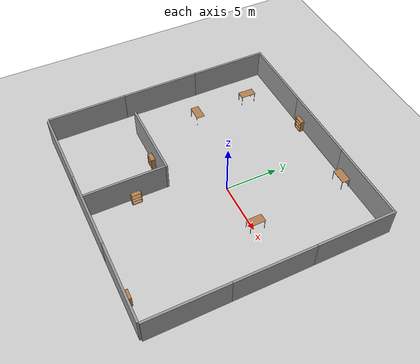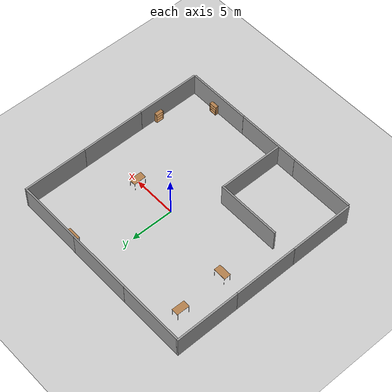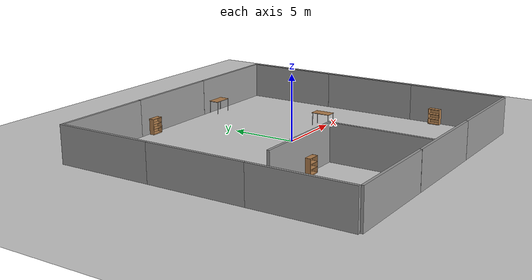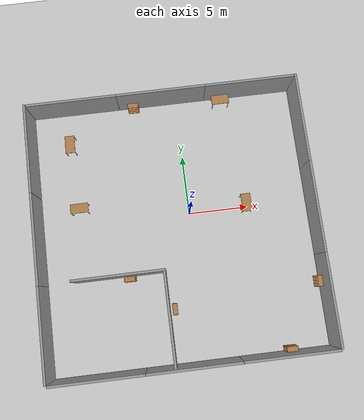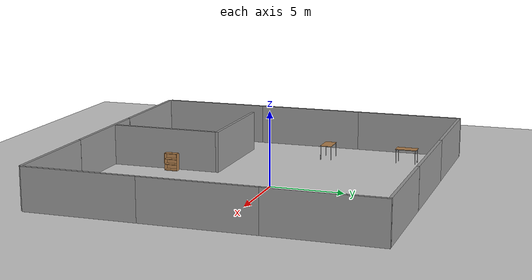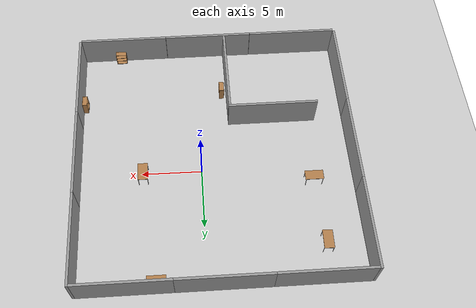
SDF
<sdf version="1.6">
 <world name="default">
  <light name="sun" type="directional">
   <pose>0 0 10 0 -0 0</pose>
   <diffuse>0.8 0.8 0.8 1</diffuse>
   <specular>0.1 0.1 0.1 1</specular>
   <attenuation>
    <range>1000</range>
    <constant>0.9</constant>
    <linear>0.01</linear>
    <quadratic>0.001</quadratic>
   </attenuation>
   <direction>-0.5 0.5 -1</direction>
  </light>
  <model name="ground_plane">
   <static>1</static>
   <link name="link">
    <collision name="collision">
     <geometry><plane><normal>0 0 1</normal><size>100 100</size></plane></geometry>
     <surface><friction><ode><mu>100</mu><mu2>50</mu2></ode></friction></surface>
    </collision>
    <visual name="visual">
     <cast_shadows>0</cast_shadows>
     <geometry><plane><normal>0 0 1</normal><size>100 100</size></plane></geometry>
     <material>
      <script><uri>file://media/materials/scripts/gazebo.material</uri><name>Gazebo/Grey</name></script>
     </material>
    </visual>
   </link>
  </model>
  <gravity>0 0 -9.8</gravity>
  <magnetic_field>6e-06 2.3e-05 -4.2e-05</magnetic_field>
  <atmosphere type="adiabatic"/>
  <physics name="default_physics" default="0" type="ode">
   <max_step_size>0.001</max_step_size>
   <real_time_factor>1</real_time_factor>
   <real_time_update_rate>1000</real_time_update_rate>
  </physics>
  <scene><ambient>0.4 0.4 0.4 1</ambient><background>0.7 0.7 0.7 1</background><shadows>1</shadows></scene>
  <spherical_coordinates>
   <surface_model>EARTH_WGS84</surface_model>
   <latitude_deg>0</latitude_deg>
   <longitude_deg>0</longitude_deg>
   <elevation>0</elevation>
   <heading_deg>0</heading_deg>
  </spherical_coordinates>
  <model name="grey_wall">
   <static>1</static>
   <link name="link">
    <pose>0 0 1.4 0 -0 0</pose>
    <collision name="collision"><geometry><box><size>7.5 0.2 2.8</size></box></geometry></collision>
    <visual name="visual">
     <cast_shadows>0</cast_shadows>
     <geometry><box><size>7.5 0.2 2.8</size></box></geometry>
     <material>
      <script>
       <uri>model://grey_wall/materials/scripts</uri>
       <uri>model://grey_wall/materials/textures</uri>
       <name>vrc/grey_wall</name>
      </script>
     </material>
    </visual>
   </link>
   <pose>6.25382 10.1197 0 0 -0 0</pose>
  </model>
  <model name="grey_wall_0">
   <static>1</static>
   <link name="link">
    <pose>0 0 1.4 0 -0 0</pose>
    <collision name="collision"><geometry><box><size>7.5 0.2 2.8</size></box></geometry></collision>
    <visual name="visual">
     <cast_shadows>0</cast_shadows>
     <geometry><box><size>7.5 0.2 2.8</size></box></geometry>
     <material>
      <script>
       <uri>model://grey_wall/materials/scripts</uri>
       <uri>model://grey_wall/materials/textures</uri>
       <name>vrc/grey_wall</name>
      </script>
     </material>
    </visual>
   </link>
   <pose>-1.23698 10.1226 0 0 -0 0</pose>
  </model>
  <model name="grey_wall_1">
   <static>1</static>
   <link name="link">
    <pose>0 0 1.4 0 -0 0</pose>
    <collision name="collision"><geometry><box><size>7.5 0.2 2.8</size></box></geometry></collision>
    <visual name="visual">
     <cast_shadows>0</cast_shadows>
     <geometry><box><size>7.5 0.2 2.8</size></box></geometry>
     <material>
      <script>
       <uri>model://grey_wall/materials/scripts</uri>
       <uri>model://grey_wall/materials/textures</uri>
       <name>vrc/grey_wall</name>
      </script>
     </material>
    </visual>
   </link>
   <pose>-8.73155 10.1173 0 0 -0 0</pose>
  </model>
  <model name="grey_wall_2">
   <static>1</static>
   <link name="link">
    <pose>0 0 1.4 0 -0 0</pose>
    <collision name="collision"><geometry><box><size>7.5 0.2 2.8</size></box></geometry></collision>
    <visual name="visual">
     <cast_shadows>0</cast_shadows>
     <geometry><box><size>7.5 0.2 2.8</size></box></geometry>
     <material>
      <script>
       <uri>model://grey_wall/materials/scripts</uri>
       <uri>model://grey_wall/materials/textures</uri>
       <name>vrc/grey_wall</name>
      </script>
     </material>
    </visual>
   </link>
   <pose>-12.5826 6.4705 0 0 -0 1.572</pose>
  </model>
  <model name="grey_wall_2_clone">
   <static>1</static>
   <link name="link">
    <pose>0 0 1.4 0 -0 0</pose>
    <collision name="collision"><geometry><box><size>7.5 0.2 2.8</size></box></geometry></collision>
    <visual name="visual">
     <cast_shadows>0</cast_shadows>
     <geometry><box><size>7.5 0.2 2.8</size></box></geometry>
     <material>
      <script>
       <uri>model://grey_wall/materials/scripts</uri>
       <uri>model://grey_wall/materials/textures</uri>
       <name>vrc/grey_wall</name>
      </script>
     </material>
    </visual>
   </link>
   <pose>-12.575 -0.983138 0 0 -0 1.572</pose>
  </model>
  <model name="grey_wall_2_clone_0">
   <static>1</static>
   <link name="link">
    <pose>0 0 1.4 0 -0 0</pose>
    <collision name="collision"><geometry><box><size>7.5 0.2 2.8</size></box></geometry></collision>
    <visual name="visual">
     <cast_shadows>0</cast_shadows>
     <geometry><box><size>7.5 0.2 2.8</size></box></geometry>
     <material>
      <script>
       <uri>model://grey_wall/materials/scripts</uri>
       <uri>model://grey_wall/materials/textures</uri>
       <name>vrc/grey_wall</name>
      </script>
     </material>
    </visual>
   </link>
   <pose>-12.5718 -8.47888 0 0 -0 1.572</pose>
  </model>
  <model name="grey_wall_clone">
   <static>1</static>
   <link name="link">
    <pose>0 0 1.4 0 -0 0</pose>
    <collision name="collision"><geometry><box><size>7.5 0.2 2.8</size></box></geometry></collision>
    <visual name="visual">
     <cast_shadows>0</cast_shadows>
     <geometry><box><size>7.5 0.2 2.8</size></box></geometry>
     <material>
      <script>
       <uri>model://grey_wall/materials/scripts</uri>
       <uri>model://grey_wall/materials/textures</uri>
       <name>vrc/grey_wall</name>
      </script>
     </material>
    </visual>
   </link>
   <pose>-8.71741 -12.331 0 0 -0 0</pose>
  </model>
  <model name="grey_wall_clone_0">
   <static>1</static>
   <link name="link">
    <pose>0 0 1.4 0 -0 0</pose>
    <collision name="collision"><geometry><box><size>7.5 0.2 2.8</size></box></geometry></collision>
    <visual name="visual">
     <cast_shadows>0</cast_shadows>
     <geometry><box><size>7.5 0.2 2.8</size></box></geometry>
     <material>
      <script>
       <uri>model://grey_wall/materials/scripts</uri>
       <uri>model://grey_wall/materials/textures</uri>
       <name>vrc/grey_wall</name>
      </script>
     </material>
    </visual>
   </link>
   <pose>-1.20287 -12.3342 0 0 -0 0</pose>
  </model>
  <model name="grey_wall_clone_1">
   <static>1</static>
   <link name="link">
    <pose>0 0 1.4 0 -0 0</pose>
    <collision name="collision"><geometry><box><size>7.5 0.2 2.8</size></box></geometry></collision>
    <visual name="visual">
     <cast_shadows>0</cast_shadows>
     <geometry><box><size>7.5 0.2 2.8</size></box></geometry>
     <material>
      <script>
       <uri>model://grey_wall/materials/scripts</uri>
       <uri>model://grey_wall/materials/textures</uri>
       <name>vrc/grey_wall</name>
      </script>
     </material>
    </visual>
   </link>
   <pose>6.30877 -12.3318 0 0 -0 0</pose>
  </model>
  <model name="grey_wall_2_clone_0_clone">
   <static>1</static>
   <link name="link">
    <pose>0 0 1.4 0 -0 0</pose>
    <collision name="collision"><geometry><box><size>7.5 0.2 2.8</size></box></geometry></collision>
    <visual name="visual">
     <cast_shadows>0</cast_shadows>
     <geometry><box><size>7.5 0.2 2.8</size></box></geometry>
     <material>
      <script>
       <uri>model://grey_wall/materials/scripts</uri>
       <uri>model://grey_wall/materials/textures</uri>
       <name>vrc/grey_wall</name>
      </script>
     </material>
    </visual>
   </link>
   <pose>10.1093 6.46638 0 0 -0 1.572</pose>
  </model>
  <model name="grey_wall_2_clone_0_clone_0">
   <static>1</static>
   <link name="link">
    <pose>0 0 1.4 0 -0 0</pose>
    <collision name="collision"><geometry><box><size>7.5 0.2 2.8</size></box></geometry></collision>
    <visual name="visual">
     <cast_shadows>0</cast_shadows>
     <geometry><box><size>7.5 0.2 2.8</size></box></geometry>
     <material>
      <script>
       <uri>model://grey_wall/materials/scripts</uri>
       <uri>model://grey_wall/materials/textures</uri>
       <name>vrc/grey_wall</name>
      </script>
     </material>
    </visual>
   </link>
   <pose>10.1221 -1.02609 0 0 -0 1.572</pose>
  </model>
  <model name="grey_wall_2_clone_0_clone_1">
   <static>1</static>
   <link name="link">
    <pose>0 0 1.4 0 -0 0</pose>
    <collision name="collision"><geometry><box><size>7.5 0.2 2.8</size></box></geometry></collision>
    <visual name="visual">
     <cast_shadows>0</cast_shadows>
     <geometry><box><size>7.5 0.2 2.8</size></box></geometry>
     <material>
      <script>
       <uri>model://grey_wall/materials/scripts</uri>
       <uri>model://grey_wall/materials/textures</uri>
       <name>vrc/grey_wall</name>
      </script>
     </material>
    </visual>
   </link>
   <pose>10.1292 -8.51745 0 0 -0 1.572</pose>
  </model>
  <model name="table">
   <static>1</static>
   <link name="link">
    <collision name="surface">
     <pose>0 0 1 0 -0 0</pose>
     <geometry><box><size>1.5 0.8 0.03</size></box></geometry>
     <surface><friction><ode><mu>0.6</mu><mu2>0.6</mu2></ode></friction></surface>
    </collision>
    <visual name="visual1">
     <pose>0 0 1 0 -0 0</pose>
     <geometry><box><size>1.5 0.8 0.03</size></box></geometry>
     <material>
      <script><uri>file://media/materials/scripts/gazebo.material</uri><name>Gazebo/Wood</name></script>
     </material>
    </visual>
    <collision name="front_left_leg">
     <pose>0.68 0.38 0.5 0 -0 0</pose>
     <geometry><cylinder><radius>0.02</radius><length>1</length></cylinder></geometry>
    </collision>
    <visual name="front_left_leg">
     <pose>0.68 0.38 0.5 0 -0 0</pose>
     <geometry><cylinder><radius>0.02</radius><length>1</length></cylinder></geometry>
     <material>
      <script><uri>file://media/materials/scripts/gazebo.material</uri><name>Gazebo/Grey</name></script>
     </material>
    </visual>
    <collision name="front_right_leg">
     <pose>0.68 -0.38 0.5 0 -0 0</pose>
     <geometry><cylinder><radius>0.02</radius><length>1</length></cylinder></geometry>
    </collision>
    <visual name="front_right_leg">
     <pose>0.68 -0.38 0.5 0 -0 0</pose>
     <geometry><cylinder><radius>0.02</radius><length>1</length></cylinder></geometry>
     <material>
      <script><uri>file://media/materials/scripts/gazebo.material</uri><name>Gazebo/Grey</name></script>
     </material>
    </visual>
    <collision name="back_right_leg">
     <pose>-0.68 -0.38 0.5 0 -0 0</pose>
     <geometry><cylinder><radius>0.02</radius><length>1</length></cylinder></geometry>
    </collision>
    <visual name="back_right_leg">
     <pose>-0.68 -0.38 0.5 0 -0 0</pose>
     <geometry><cylinder><radius>0.02</radius><length>1</length></cylinder></geometry>
     <material>
      <script><uri>file://media/materials/scripts/gazebo.material</uri><name>Gazebo/Grey</name></script>
     </material>
    </visual>
    <collision name="back_left_leg">
     <pose>-0.68 0.38 0.5 0 -0 0</pose>
     <geometry><cylinder><radius>0.02</radius><length>1</length></cylinder></geometry>
    </collision>
    <visual name="back_left_leg">
     <pose>-0.68 0.38 0.5 0 -0 0</pose>
     <geometry><cylinder><radius>0.02</radius><length>1</length></cylinder></geometry>
     <material>
      <script><uri>file://media/materials/scripts/gazebo.material</uri><name>Gazebo/Grey</name></script>
     </material>
    </visual>
   </link>
   <pose>-9.44698 7.0204 0 0 0 -1.59252</pose>
  </model>
  <model name="table_0">
   <static>1</static>
   <link name="link">
    <collision name="surface">
     <pose>0 0 1 0 -0 0</pose>
     <geometry><box><size>1.5 0.8 0.03</size></box></geometry>
     <surface><friction><ode><mu>0.6</mu><mu2>0.6</mu2></ode></friction></surface>
    </collision>
    <visual name="visual1">
     <pose>0 0 1 0 -0 0</pose>
     <geometry><box><size>1.5 0.8 0.03</size></box></geometry>
     <material>
      <script><uri>file://media/materials/scripts/gazebo.material</uri><name>Gazebo/Wood</name></script>
     </material>
    </visual>
    <collision name="front_left_leg">
     <pose>0.68 0.38 0.5 0 -0 0</pose>
     <geometry><cylinder><radius>0.02</radius><length>1</length></cylinder></geometry>
    </collision>
    <visual name="front_left_leg">
     <pose>0.68 0.38 0.5 0 -0 0</pose>
     <geometry><cylinder><radius>0.02</radius><length>1</length></cylinder></geometry>
     <material>
      <script><uri>file://media/materials/scripts/gazebo.material</uri><name>Gazebo/Grey</name></script>
     </material>
    </visual>
    <collision name="front_right_leg">
     <pose>0.68 -0.38 0.5 0 -0 0</pose>
     <geometry><cylinder><radius>0.02</radius><length>1</length></cylinder></geometry>
    </collision>
    <visual name="front_right_leg">
     <pose>0.68 -0.38 0.5 0 -0 0</pose>
     <geometry><cylinder><radius>0.02</radius><length>1</length></cylinder></geometry>
     <material>
      <script><uri>file://media/materials/scripts/gazebo.material</uri><name>Gazebo/Grey</name></script>
     </material>
    </visual>
    <collision name="back_right_leg">
     <pose>-0.68 -0.38 0.5 0 -0 0</pose>
     <geometry><cylinder><radius>0.02</radius><length>1</length></cylinder></geometry>
    </collision>
    <visual name="back_right_leg">
     <pose>-0.68 -0.38 0.5 0 -0 0</pose>
     <geometry><cylinder><radius>0.02</radius><length>1</length></cylinder></geometry>
     <material>
      <script><uri>file://media/materials/scripts/gazebo.material</uri><name>Gazebo/Grey</name></script>
     </material>
    </visual>
    <collision name="back_left_leg">
     <pose>-0.68 0.38 0.5 0 -0 0</pose>
     <geometry><cylinder><radius>0.02</radius><length>1</length></cylinder></geometry>
    </collision>
    <visual name="back_left_leg">
     <pose>-0.68 0.38 0.5 0 -0 0</pose>
     <geometry><cylinder><radius>0.02</radius><length>1</length></cylinder></geometry>
     <material>
      <script><uri>file://media/materials/scripts/gazebo.material</uri><name>Gazebo/Grey</name></script>
     </material>
    </visual>
   </link>
   <pose>-9.14108 1.39096 0 0 -0 0</pose>
  </model>
  <model name="grey_wall_2_clone_0_clone_2">
   <static>1</static>
   <link name="link">
    <pose>0 0 1.4 0 -0 0</pose>
    <collision name="collision"><geometry><box><size>7.5 0.2 2.8</size></box></geometry></collision>
    <visual name="visual">
     <cast_shadows>0</cast_shadows>
     <geometry><box><size>7.5 0.2 2.8</size></box></geometry>
     <material>
      <script>
       <uri>model://grey_wall/materials/scripts</uri>
       <uri>model://grey_wall/materials/textures</uri>
       <name>vrc/grey_wall</name>
      </script>
     </material>
    </visual>
   </link>
   <pose>-2.64766 -8.48031 0 0 -0 1.572</pose>
  </model>
  <model name="grey_wall_clone_clone">
   <static>1</static>
   <link name="link">
    <pose>0 0 1.4 0 -0 0</pose>
    <collision name="collision"><geometry><box><size>7.5 0.2 2.8</size></box></geometry></collision>
    <visual name="visual">
     <cast_shadows>0</cast_shadows>
     <geometry><box><size>7.5 0.2 2.8</size></box></geometry>
     <material>
      <script>
       <uri>model://grey_wall/materials/scripts</uri>
       <uri>model://grey_wall/materials/textures</uri>
       <name>vrc/grey_wall</name>
      </script>
     </material>
    </visual>
   </link>
   <pose>-6.2905 -4.64238 0 0 -0 0</pose>
  </model>
  <model name="bookshelf">
   <static>1</static>
   <link name="link">
    <inertial><mass>1</mass></inertial>
    <collision name="back">
     <pose>0 0.005 0.6 0 -0 0</pose>
     <geometry><box><size>0.9 0.01 1.2</size></box></geometry>
    </collision>
    <visual name="visual1">
     <pose>0 0.005 0.6 0 -0 0</pose>
     <geometry><box><size>0.9 0.01 1.2</size></box></geometry>
     <material>
      <script><uri>file://media/materials/scripts/gazebo.material</uri><name>Gazebo/Wood</name></script>
     </material>
    </visual>
    <collision name="left_side">
     <pose>0.45 -0.195 0.6 0 -0 0</pose>
     <geometry><box><size>0.02 0.4 1.2</size></box></geometry>
    </collision>
    <visual name="visual2">
     <pose>0.45 -0.195 0.6 0 -0 0</pose>
     <geometry><box><size>0.02 0.4 1.2</size></box></geometry>
     <material>
      <script><uri>file://media/materials/scripts/gazebo.material</uri><name>Gazebo/Wood</name></script>
     </material>
    </visual>
    <collision name="right_side">
     <pose>-0.45 -0.195 0.6 0 -0 0</pose>
     <geometry><box><size>0.02 0.4 1.2</size></box></geometry>
    </collision>
    <visual name="visual3">
     <pose>-0.45 -0.195 0.6 0 -0 0</pose>
     <geometry><box><size>0.02 0.4 1.2</size></box></geometry>
     <material>
      <script><uri>file://media/materials/scripts/gazebo.material</uri><name>Gazebo/Wood</name></script>
     </material>
    </visual>
    <collision name="bottom">
     <pose>0 -0.195 0.03 0 -0 0</pose>
     <geometry><box><size>0.88 0.4 0.06</size></box></geometry>
    </collision>
    <visual name="visual4">
     <pose>0 -0.195 0.03 0 -0 0</pose>
     <geometry><box><size>0.88 0.4 0.06</size></box></geometry>
     <material>
      <script><uri>file://media/materials/scripts/gazebo.material</uri><name>Gazebo/Wood</name></script>
     </material>
    </visual>
    <collision name="top">
     <pose>0 -0.195 1.19 0 -0 0</pose>
     <geometry><box><size>0.88 0.4 0.02</size></box></geometry>
    </collision>
    <visual name="visual5">
     <pose>0 -0.195 1.19 0 -0 0</pose>
     <geometry><box><size>0.88 0.4 0.02</size></box></geometry>
     <material>
      <script><uri>file://media/materials/scripts/gazebo.material</uri><name>Gazebo/Wood</name></script>
     </material>
    </visual>
    <collision name="low_shelf">
     <pose>0 -0.195 0.43 0 -0 0</pose>
     <geometry><box><size>0.88 0.4 0.02</size></box></geometry>
    </collision>
    <visual name="visual6">
     <pose>0 -0.195 0.43 0 -0 0</pose>
     <geometry><box><size>0.88 0.4 0.02</size></box></geometry>
     <material>
      <script><uri>file://media/materials/scripts/gazebo.material</uri><name>Gazebo/Wood</name></script>
     </material>
    </visual>
    <collision name="high_shelf">
     <pose>0 -0.195 0.8 0 -0 0</pose>
     <geometry><box><size>0.88 0.4 0.02</size></box></geometry>
    </collision>
    <visual name="visual7">
     <pose>0 -0.195 0.8 0 -0 0</pose>
     <geometry><box><size>0.88 0.4 0.02</size></box></geometry>
     <material>
      <script><uri>file://media/materials/scripts/gazebo.material</uri><name>Gazebo/Wood</name></script>
     </material>
    </visual>
   </link>
   <pose>-5.53659 -4.78362 0 0 -0 0</pose>
  </model>
  <model name="table_1">
   <static>1</static>
   <link name="link">
    <collision name="surface">
     <pose>0 0 1 0 -0 0</pose>
     <geometry><box><size>1.5 0.8 0.03</size></box></geometry>
     <surface><friction><ode><mu>0.6</mu><mu2>0.6</mu2></ode></friction></surface>
    </collision>
    <visual name="visual1">
     <pose>0 0 1 0 -0 0</pose>
     <geometry><box><size>1.5 0.8 0.03</size></box></geometry>
     <material>
      <script><uri>file://media/materials/scripts/gazebo.material</uri><name>Gazebo/Wood</name></script>
     </material>
    </visual>
    <collision name="front_left_leg">
     <pose>0.68 0.38 0.5 0 -0 0</pose>
     <geometry><cylinder><radius>0.02</radius><length>1</length></cylinder></geometry>
    </collision>
    <visual name="front_left_leg">
     <pose>0.68 0.38 0.5 0 -0 0</pose>
     <geometry><cylinder><radius>0.02</radius><length>1</length></cylinder></geometry>
     <material>
      <script><uri>file://media/materials/scripts/gazebo.material</uri><name>Gazebo/Grey</name></script>
     </material>
    </visual>
    <collision name="front_right_leg">
     <pose>0.68 -0.38 0.5 0 -0 0</pose>
     <geometry><cylinder><radius>0.02</radius><length>1</length></cylinder></geometry>
    </collision>
    <visual name="front_right_leg">
     <pose>0.68 -0.38 0.5 0 -0 0</pose>
     <geometry><cylinder><radius>0.02</radius><length>1</length></cylinder></geometry>
     <material>
      <script><uri>file://media/materials/scripts/gazebo.material</uri><name>Gazebo/Grey</name></script>
     </material>
    </visual>
    <collision name="back_right_leg">
     <pose>-0.68 -0.38 0.5 0 -0 0</pose>
     <geometry><cylinder><radius>0.02</radius><length>1</length></cylinder></geometry>
    </collision>
    <visual name="back_right_leg">
     <pose>-0.68 -0.38 0.5 0 -0 0</pose>
     <geometry><cylinder><radius>0.02</radius><length>1</length></cylinder></geometry>
     <material>
      <script><uri>file://media/materials/scripts/gazebo.material</uri><name>Gazebo/Grey</name></script>
     </material>
    </visual>
    <collision name="back_left_leg">
     <pose>-0.68 0.38 0.5 0 -0 0</pose>
     <geometry><cylinder><radius>0.02</radius><length>1</length></cylinder></geometry>
    </collision>
    <visual name="back_left_leg">
     <pose>-0.68 0.38 0.5 0 -0 0</pose>
     <geometry><cylinder><radius>0.02</radius><length>1</length></cylinder></geometry>
     <material>
      <script><uri>file://media/materials/scripts/gazebo.material</uri><name>Gazebo/Grey</name></script>
     </material>
    </visual>
   </link>
   <pose>4.81867 0.232951 0 0 0 -1.56329</pose>
  </model>
  <model name="bookshelf_0_clone">
   <static>1</static>
   <link name="link">
    <inertial><mass>1</mass></inertial>
    <collision name="back">
     <pose>0 0.005 0.6 0 -0 0</pose>
     <geometry><box><size>0.9 0.01 1.2</size></box></geometry>
    </collision>
    <visual name="visual1">
     <pose>0 0.005 0.6 0 -0 0</pose>
     <geometry><box><size>0.9 0.01 1.2</size></box></geometry>
     <material>
      <script><uri>file://media/materials/scripts/gazebo.material</uri><name>Gazebo/Wood</name></script>
     </material>
    </visual>
    <collision name="left_side">
     <pose>0.45 -0.195 0.6 0 -0 0</pose>
     <geometry><box><size>0.02 0.4 1.2</size></box></geometry>
    </collision>
    <visual name="visual2">
     <pose>0.45 -0.195 0.6 0 -0 0</pose>
     <geometry><box><size>0.02 0.4 1.2</size></box></geometry>
     <material>
      <script><uri>file://media/materials/scripts/gazebo.material</uri><name>Gazebo/Wood</name></script>
     </material>
    </visual>
    <collision name="right_side">
     <pose>-0.45 -0.195 0.6 0 -0 0</pose>
     <geometry><box><size>0.02 0.4 1.2</size></box></geometry>
    </collision>
    <visual name="visual3">
     <pose>-0.45 -0.195 0.6 0 -0 0</pose>
     <geometry><box><size>0.02 0.4 1.2</size></box></geometry>
     <material>
      <script><uri>file://media/materials/scripts/gazebo.material</uri><name>Gazebo/Wood</name></script>
     </material>
    </visual>
    <collision name="bottom">
     <pose>0 -0.195 0.03 0 -0 0</pose>
     <geometry><box><size>0.88 0.4 0.06</size></box></geometry>
    </collision>
    <visual name="visual4">
     <pose>0 -0.195 0.03 0 -0 0</pose>
     <geometry><box><size>0.88 0.4 0.06</size></box></geometry>
     <material>
      <script><uri>file://media/materials/scripts/gazebo.material</uri><name>Gazebo/Wood</name></script>
     </material>
    </visual>
    <collision name="top">
     <pose>0 -0.195 1.19 0 -0 0</pose>
     <geometry><box><size>0.88 0.4 0.02</size></box></geometry>
    </collision>
    <visual name="visual5">
     <pose>0 -0.195 1.19 0 -0 0</pose>
     <geometry><box><size>0.88 0.4 0.02</size></box></geometry>
     <material>
      <script><uri>file://media/materials/scripts/gazebo.material</uri><name>Gazebo/Wood</name></script>
     </material>
    </visual>
    <collision name="low_shelf">
     <pose>0 -0.195 0.43 0 -0 0</pose>
     <geometry><box><size>0.88 0.4 0.02</size></box></geometry>
    </collision>
    <visual name="visual6">
     <pose>0 -0.195 0.43 0 -0 0</pose>
     <geometry><box><size>0.88 0.4 0.02</size></box></geometry>
     <material>
      <script><uri>file://media/materials/scripts/gazebo.material</uri><name>Gazebo/Wood</name></script>
     </material>
    </visual>
    <collision name="high_shelf">
     <pose>0 -0.195 0.8 0 -0 0</pose>
     <geometry><box><size>0.88 0.4 0.02</size></box></geometry>
    </collision>
    <visual name="visual7">
     <pose>0 -0.195 0.8 0 -0 0</pose>
     <geometry><box><size>0.88 0.4 0.02</size></box></geometry>
     <material>
      <script><uri>file://media/materials/scripts/gazebo.material</uri><name>Gazebo/Wood</name></script>
     </material>
    </visual>
   </link>
   <pose>10.0062 -6.96684 0 0 0 -1.58107</pose>
  </model>
  <model name="bookshelf_1">
   <static>1</static>
   <link name="link">
    <inertial><mass>1</mass></inertial>
    <collision name="back">
     <pose>0 0.005 0.6 0 -0 0</pose>
     <geometry><box><size>0.9 0.01 1.2</size></box></geometry>
    </collision>
    <visual name="visual1">
     <pose>0 0.005 0.6 0 -0 0</pose>
     <geometry><box><size>0.9 0.01 1.2</size></box></geometry>
     <material>
      <script><uri>file://media/materials/scripts/gazebo.material</uri><name>Gazebo/Wood</name></script>
     </material>
    </visual>
    <collision name="left_side">
     <pose>0.45 -0.195 0.6 0 -0 0</pose>
     <geometry><box><size>0.02 0.4 1.2</size></box></geometry>
    </collision>
    <visual name="visual2">
     <pose>0.45 -0.195 0.6 0 -0 0</pose>
     <geometry><box><size>0.02 0.4 1.2</size></box></geometry>
     <material>
      <script><uri>file://media/materials/scripts/gazebo.material</uri><name>Gazebo/Wood</name></script>
     </material>
    </visual>
    <collision name="right_side">
     <pose>-0.45 -0.195 0.6 0 -0 0</pose>
     <geometry><box><size>0.02 0.4 1.2</size></box></geometry>
    </collision>
    <visual name="visual3">
     <pose>-0.45 -0.195 0.6 0 -0 0</pose>
     <geometry><box><size>0.02 0.4 1.2</size></box></geometry>
     <material>
      <script><uri>file://media/materials/scripts/gazebo.material</uri><name>Gazebo/Wood</name></script>
     </material>
    </visual>
    <collision name="bottom">
     <pose>0 -0.195 0.03 0 -0 0</pose>
     <geometry><box><size>0.88 0.4 0.06</size></box></geometry>
    </collision>
    <visual name="visual4">
     <pose>0 -0.195 0.03 0 -0 0</pose>
     <geometry><box><size>0.88 0.4 0.06</size></box></geometry>
     <material>
      <script><uri>file://media/materials/scripts/gazebo.material</uri><name>Gazebo/Wood</name></script>
     </material>
    </visual>
    <collision name="top">
     <pose>0 -0.195 1.19 0 -0 0</pose>
     <geometry><box><size>0.88 0.4 0.02</size></box></geometry>
    </collision>
    <visual name="visual5">
     <pose>0 -0.195 1.19 0 -0 0</pose>
     <geometry><box><size>0.88 0.4 0.02</size></box></geometry>
     <material>
      <script><uri>file://media/materials/scripts/gazebo.material</uri><name>Gazebo/Wood</name></script>
     </material>
    </visual>
    <collision name="low_shelf">
     <pose>0 -0.195 0.43 0 -0 0</pose>
     <geometry><box><size>0.88 0.4 0.02</size></box></geometry>
    </collision>
    <visual name="visual6">
     <pose>0 -0.195 0.43 0 -0 0</pose>
     <geometry><box><size>0.88 0.4 0.02</size></box></geometry>
     <material>
      <script><uri>file://media/materials/scripts/gazebo.material</uri><name>Gazebo/Wood</name></script>
     </material>
    </visual>
    <collision name="high_shelf">
     <pose>0 -0.195 0.8 0 -0 0</pose>
     <geometry><box><size>0.88 0.4 0.02</size></box></geometry>
    </collision>
    <visual name="visual7">
     <pose>0 -0.195 0.8 0 -0 0</pose>
     <geometry><box><size>0.88 0.4 0.02</size></box></geometry>
     <material>
      <script><uri>file://media/materials/scripts/gazebo.material</uri><name>Gazebo/Wood</name></script>
     </material>
    </visual>
   </link>
   <pose>-2.35139 -7.81606 0 0 -0 1.56828</pose>
  </model>
  <model name="bookshelf_2">
   <static>1</static>
   <link name="link">
    <inertial><mass>1</mass></inertial>
    <collision name="back">
     <pose>0 0.005 0.6 0 -0 0</pose>
     <geometry><box><size>0.9 0.01 1.2</size></box></geometry>
    </collision>
    <visual name="visual1">
     <pose>0 0.005 0.6 0 -0 0</pose>
     <geometry><box><size>0.9 0.01 1.2</size></box></geometry>
     <material>
      <script><uri>file://media/materials/scripts/gazebo.material</uri><name>Gazebo/Wood</name></script>
     </material>
    </visual>
    <collision name="left_side">
     <pose>0.45 -0.195 0.6 0 -0 0</pose>
     <geometry><box><size>0.02 0.4 1.2</size></box></geometry>
    </collision>
    <visual name="visual2">
     <pose>0.45 -0.195 0.6 0 -0 0</pose>
     <geometry><box><size>0.02 0.4 1.2</size></box></geometry>
     <material>
      <script><uri>file://media/materials/scripts/gazebo.material</uri><name>Gazebo/Wood</name></script>
     </material>
    </visual>
    <collision name="right_side">
     <pose>-0.45 -0.195 0.6 0 -0 0</pose>
     <geometry><box><size>0.02 0.4 1.2</size></box></geometry>
    </collision>
    <visual name="visual3">
     <pose>-0.45 -0.195 0.6 0 -0 0</pose>
     <geometry><box><size>0.02 0.4 1.2</size></box></geometry>
     <material>
      <script><uri>file://media/materials/scripts/gazebo.material</uri><name>Gazebo/Wood</name></script>
     </material>
    </visual>
    <collision name="bottom">
     <pose>0 -0.195 0.03 0 -0 0</pose>
     <geometry><box><size>0.88 0.4 0.06</size></box></geometry>
    </collision>
    <visual name="visual4">
     <pose>0 -0.195 0.03 0 -0 0</pose>
     <geometry><box><size>0.88 0.4 0.06</size></box></geometry>
     <material>
      <script><uri>file://media/materials/scripts/gazebo.material</uri><name>Gazebo/Wood</name></script>
     </material>
    </visual>
    <collision name="top">
     <pose>0 -0.195 1.19 0 -0 0</pose>
     <geometry><box><size>0.88 0.4 0.02</size></box></geometry>
    </collision>
    <visual name="visual5">
     <pose>0 -0.195 1.19 0 -0 0</pose>
     <geometry><box><size>0.88 0.4 0.02</size></box></geometry>
     <material>
      <script><uri>file://media/materials/scripts/gazebo.material</uri><name>Gazebo/Wood</name></script>
     </material>
    </visual>
    <collision name="low_shelf">
     <pose>0 -0.195 0.43 0 -0 0</pose>
     <geometry><box><size>0.88 0.4 0.02</size></box></geometry>
    </collision>
    <visual name="visual6">
     <pose>0 -0.195 0.43 0 -0 0</pose>
     <geometry><box><size>0.88 0.4 0.02</size></box></geometry>
     <material>
      <script><uri>file://media/materials/scripts/gazebo.material</uri><name>Gazebo/Wood</name></script>
     </material>
    </visual>
    <collision name="high_shelf">
     <pose>0 -0.195 0.8 0 -0 0</pose>
     <geometry><box><size>0.88 0.4 0.02</size></box></geometry>
    </collision>
    <visual name="visual7">
     <pose>0 -0.195 0.8 0 -0 0</pose>
     <geometry><box><size>0.88 0.4 0.02</size></box></geometry>
     <material>
      <script><uri>file://media/materials/scripts/gazebo.material</uri><name>Gazebo/Wood</name></script>
     </material>
    </visual>
   </link>
   <pose>-3.7256 9.97276 0 0 -0 0</pose>
  </model>
  <model name="bookshelf_3">
   <static>1</static>
   <link name="link">
    <inertial><mass>1</mass></inertial>
    <collision name="back">
     <pose>0 0.005 0.6 0 -0 0</pose>
     <geometry><box><size>0.9 0.01 1.2</size></box></geometry>
    </collision>
    <visual name="visual1">
     <pose>0 0.005 0.6 0 -0 0</pose>
     <geometry><box><size>0.9 0.01 1.2</size></box></geometry>
     <material>
      <script><uri>file://media/materials/scripts/gazebo.material</uri><name>Gazebo/Wood</name></script>
     </material>
    </visual>
    <collision name="left_side">
     <pose>0.45 -0.195 0.6 0 -0 0</pose>
     <geometry><box><size>0.02 0.4 1.2</size></box></geometry>
    </collision>
    <visual name="visual2">
     <pose>0.45 -0.195 0.6 0 -0 0</pose>
     <geometry><box><size>0.02 0.4 1.2</size></box></geometry>
     <material>
      <script><uri>file://media/materials/scripts/gazebo.material</uri><name>Gazebo/Wood</name></script>
     </material>
    </visual>
    <collision name="right_side">
     <pose>-0.45 -0.195 0.6 0 -0 0</pose>
     <geometry><box><size>0.02 0.4 1.2</size></box></geometry>
    </collision>
    <visual name="visual3">
     <pose>-0.45 -0.195 0.6 0 -0 0</pose>
     <geometry><box><size>0.02 0.4 1.2</size></box></geometry>
     <material>
      <script><uri>file://media/materials/scripts/gazebo.material</uri><name>Gazebo/Wood</name></script>
     </material>
    </visual>
    <collision name="bottom">
     <pose>0 -0.195 0.03 0 -0 0</pose>
     <geometry><box><size>0.88 0.4 0.06</size></box></geometry>
    </collision>
    <visual name="visual4">
     <pose>0 -0.195 0.03 0 -0 0</pose>
     <geometry><box><size>0.88 0.4 0.06</size></box></geometry>
     <material>
      <script><uri>file://media/materials/scripts/gazebo.material</uri><name>Gazebo/Wood</name></script>
     </material>
    </visual>
    <collision name="top">
     <pose>0 -0.195 1.19 0 -0 0</pose>
     <geometry><box><size>0.88 0.4 0.02</size></box></geometry>
    </collision>
    <visual name="visual5">
     <pose>0 -0.195 1.19 0 -0 0</pose>
     <geometry><box><size>0.88 0.4 0.02</size></box></geometry>
     <material>
      <script><uri>file://media/materials/scripts/gazebo.material</uri><name>Gazebo/Wood</name></script>
     </material>
    </visual>
    <collision name="low_shelf">
     <pose>0 -0.195 0.43 0 -0 0</pose>
     <geometry><box><size>0.88 0.4 0.02</size></box></geometry>
    </collision>
    <visual name="visual6">
     <pose>0 -0.195 0.43 0 -0 0</pose>
     <geometry><box><size>0.88 0.4 0.02</size></box></geometry>
     <material>
      <script><uri>file://media/materials/scripts/gazebo.material</uri><name>Gazebo/Wood</name></script>
     </material>
    </visual>
    <collision name="high_shelf">
     <pose>0 -0.195 0.8 0 -0 0</pose>
     <geometry><box><size>0.88 0.4 0.02</size></box></geometry>
    </collision>
    <visual name="visual7">
     <pose>0 -0.195 0.8 0 -0 0</pose>
     <geometry><box><size>0.88 0.4 0.02</size></box></geometry>
     <material>
      <script><uri>file://media/materials/scripts/gazebo.material</uri><name>Gazebo/Wood</name></script>
     </material>
    </visual>
   </link>
   <pose>6.72913 -12.2145 0 0 -0 3.1327</pose>
  </model>
  <model name="table_2">
   <static>1</static>
   <link name="link">
    <collision name="surface">
     <pose>0 0 1 0 -0 0</pose>
     <geometry><box><size>1.5 0.8 0.03</size></box></geometry>
     <surface><friction><ode><mu>0.6</mu><mu2>0.6</mu2></ode></friction></surface>
    </collision>
    <visual name="visual1">
     <pose>0 0 1 0 -0 0</pose>
     <geometry><box><size>1.5 0.8 0.03</size></box></geometry>
     <material>
      <script><uri>file://media/materials/scripts/gazebo.material</uri><name>Gazebo/Wood</name></script>
     </material>
    </visual>
    <collision name="front_left_leg">
     <pose>0.68 0.38 0.5 0 -0 0</pose>
     <geometry><cylinder><radius>0.02</radius><length>1</length></cylinder></geometry>
    </collision>
    <visual name="front_left_leg">
     <pose>0.68 0.38 0.5 0 -0 0</pose>
     <geometry><cylinder><radius>0.02</radius><length>1</length></cylinder></geometry>
     <material>
      <script><uri>file://media/materials/scripts/gazebo.material</uri><name>Gazebo/Grey</name></script>
     </material>
    </visual>
    <collision name="front_right_leg">
     <pose>0.68 -0.38 0.5 0 -0 0</pose>
     <geometry><cylinder><radius>0.02</radius><length>1</length></cylinder></geometry>
    </collision>
    <visual name="front_right_leg">
     <pose>0.68 -0.38 0.5 0 -0 0</pose>
     <geometry><cylinder><radius>0.02</radius><length>1</length></cylinder></geometry>
     <material>
      <script><uri>file://media/materials/scripts/gazebo.material</uri><name>Gazebo/Grey</name></script>
     </material>
    </visual>
    <collision name="back_right_leg">
     <pose>-0.68 -0.38 0.5 0 -0 0</pose>
     <geometry><cylinder><radius>0.02</radius><length>1</length></cylinder></geometry>
    </collision>
    <visual name="back_right_leg">
     <pose>-0.68 -0.38 0.5 0 -0 0</pose>
     <geometry><cylinder><radius>0.02</radius><length>1</length></cylinder></geometry>
     <material>
      <script><uri>file://media/materials/scripts/gazebo.material</uri><name>Gazebo/Grey</name></script>
     </material>
    </visual>
    <collision name="back_left_leg">
     <pose>-0.68 0.38 0.5 0 -0 0</pose>
     <geometry><cylinder><radius>0.02</radius><length>1</length></cylinder></geometry>
    </collision>
    <visual name="back_left_leg">
     <pose>-0.68 0.38 0.5 0 -0 0</pose>
     <geometry><cylinder><radius>0.02</radius><length>1</length></cylinder></geometry>
     <material>
      <script><uri>file://media/materials/scripts/gazebo.material</uri><name>Gazebo/Grey</name></script>
     </material>
    </visual>
   </link>
   <pose>3.84404 9.52724 0 0 -0 0</pose>
  </model>
 </world>
</sdf>
